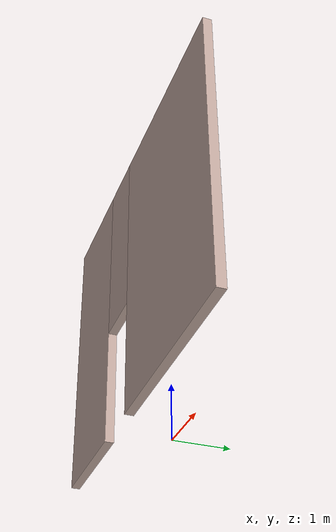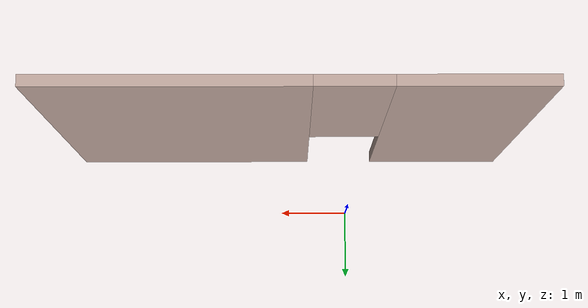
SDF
<?xml version='1.0'?>
<sdf version='1.7'>
  <model name='test_layout'>
    <pose>0.876914 -0.492619 0 0 -0 0</pose>
    <link name='Wall_5'>
      <pose>0 -0.417619 0 0 -0 0</pose>
      <visual name='Wall_5_Visual_0'>
        <pose>-2.25971 0 2.5 0 -0 0</pose>
        <geometry>
          <box>
            <size>1.98057 0.15 5</size>
          </box>
        </geometry>
        <material>
          <script>
            <uri>file://media/materials/scripts/gazebo.material</uri>
            <name>Gazebo/Grey</name>
          </script>
          <ambient>0.760784 0.662745 0.627451 1</ambient>
        </material>
        <meta>
          <layer>0</layer>
        </meta>
      </visual>
      <collision name='Wall_5_Collision_0'>
        <geometry>
          <box>
            <size>1.98057 0.15 5</size>
          </box>
        </geometry>
        <pose>-2.25971 0 2.5 0 -0 0</pose>
      </collision>
      <visual name='Wall_5_Visual_1'>
        <pose>1.48529 0 2.5 0 -0 0</pose>
        <geometry>
          <box>
            <size>3.52943 0.15 5</size>
          </box>
        </geometry>
        <material>
          <script>
            <uri>file://media/materials/scripts/gazebo.material</uri>
            <name>Gazebo/Grey</name>
          </script>
          <ambient>0.760784 0.662745 0.627451 1</ambient>
        </material>
        <meta>
          <layer>0</layer>
        </meta>
      </visual>
      <collision name='Wall_5_Collision_1'>
        <geometry>
          <box>
            <size>3.52943 0.15 5</size>
          </box>
        </geometry>
        <pose>1.48529 0 2.5 0 -0 0</pose>
      </collision>
      <visual name='Wall_5_Visual_2'>
        <pose>-0.774428 0 3.5 0 -0 0</pose>
        <geometry>
          <box>
            <size>0.99 0.15 3</size>
          </box>
        </geometry>
        <material>
          <script>
            <uri>file://media/materials/scripts/gazebo.material</uri>
            <name>Gazebo/Grey</name>
          </script>
          <ambient>0.760784 0.662745 0.627451 1</ambient>
        </material>
        <meta>
          <layer>0</layer>
        </meta>
      </visual>
      <collision name='Wall_5_Collision_2'>
        <geometry>
          <box>
            <size>0.99 0.15 3</size>
          </box>
        </geometry>
        <pose>-0.774428 0 3.5 0 -0 0</pose>
      </collision>
    </link>
    <static>1</static>
  </model>
</sdf>
